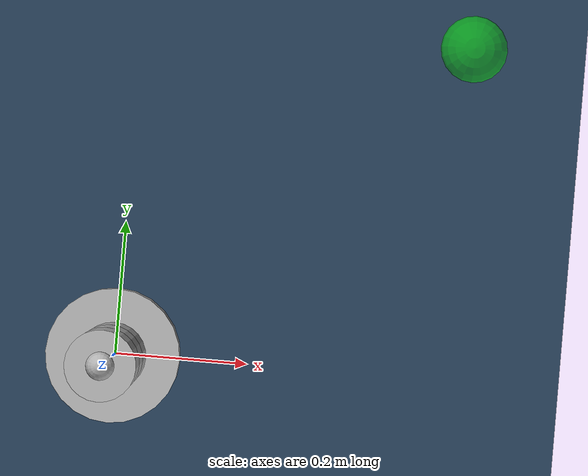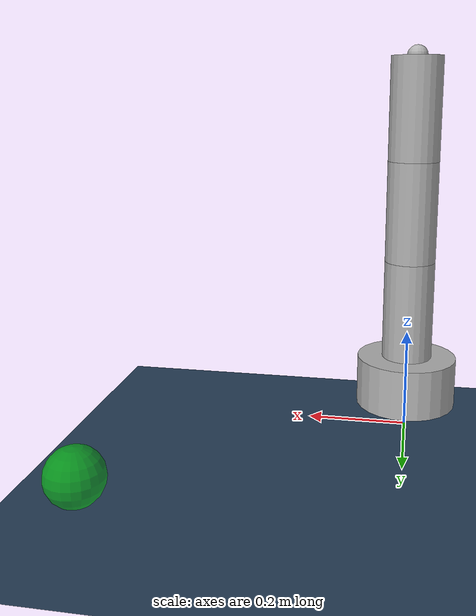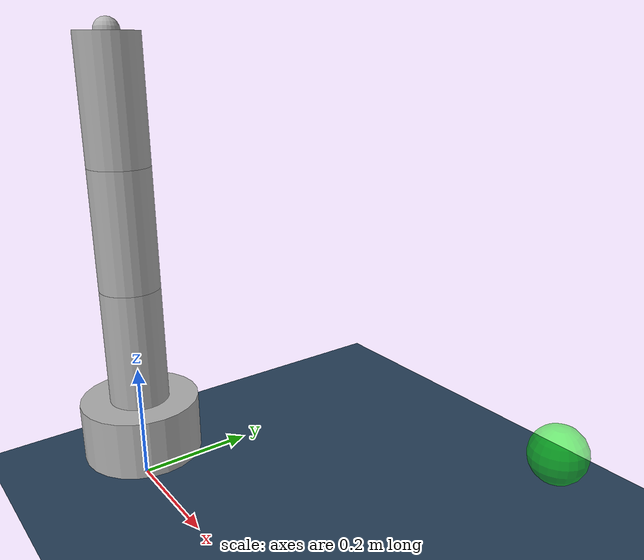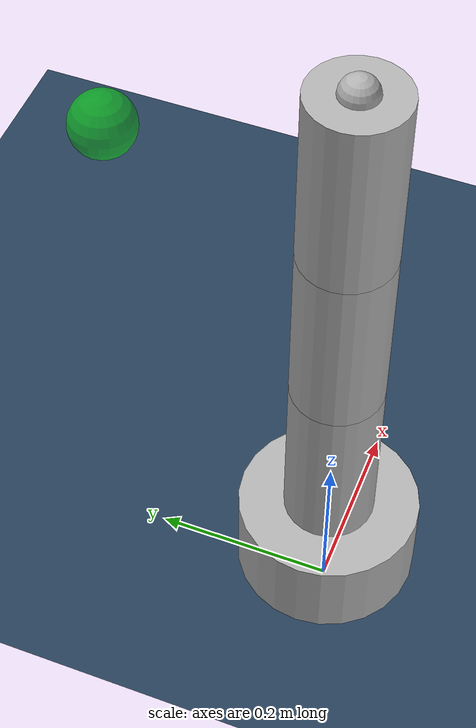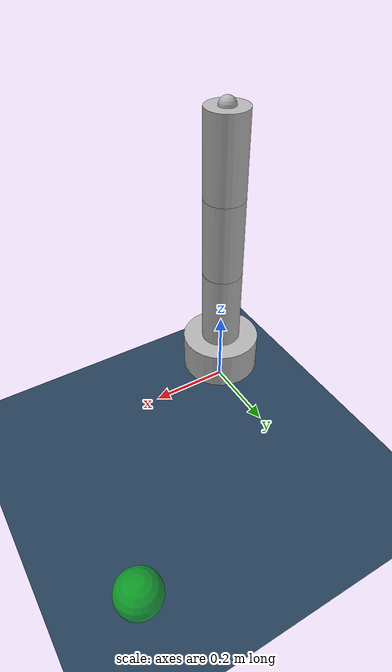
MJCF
<?xml version="1.0" encoding="UTF-8"?>
<mujoco model="simple_robot">
  <!-- Options -->
  <option timestep="0.01" iterations="50" solver="Newton" tolerance="1e-10"/>

  <!-- Defaults -->
  <default>
    <default class="visual">
      <geom contype="0" conaffinity="0" group="1"/>
    </default>
    <default class="collision">
      <geom contype="1" conaffinity="1" group="0"/>
    </default>
    <default class="joint">
      <joint armature="0.01" damping="0.1" frictionloss="0.01"/>
    </default>
    <default class="actuator">
      <position ctrlrange="-1 1" kp="100"/>
    </default>
  </default>

  <!-- Assets -->
  <asset>
    <texture name="grid" type="2d" builtin="checker" rgb1="0.1 0.2 0.3" rgb2="0.2 0.3 0.4" width="512" height="512"/>
    <material name="grid" texture="grid" texrepeat="1 1" texuniform="true" reflectance="0.2"/>
    <material name="robot" rgba="0.7 0.7 0.7 1"/>
    <material name="target" rgba="0 1 0 0.5"/>
  </asset>

  <!-- World -->
  <worldbody>
    <!-- Ground plane -->
    <geom name="ground" type="plane" size="10 10 0.1" pos="0 0 0" quat="1 0 0 0" material="grid" class="collision"/>
    <geom name="ground_visual" type="plane" size="10 10 0.1" pos="0 0 0" quat="1 0 0 0" material="grid" class="visual"/>

    <!-- Robot base -->
    <body name="base" pos="0 0 0.1">
      <geom name="base_geom" type="cylinder" size="0.1 0.05" material="robot" class="collision"/>
      <geom name="base_visual" type="cylinder" size="0.1 0.05" material="robot" class="visual"/>

      <!-- Joint 1 -->
      <body name="link1" pos="0 0 0.05">
        <joint name="joint1" type="hinge" axis="0 0 1" pos="0 0 0" class="joint"/>
        <geom name="link1_geom" type="cylinder" size="0.05 0.1" pos="0 0 0.1" material="robot" class="collision"/>
        <geom name="link1_visual" type="cylinder" size="0.05 0.1" pos="0 0 0.1" material="robot" class="visual"/>

        <!-- Joint 2 -->
        <body name="link2" pos="0 0 0.2">
          <joint name="joint2" type="hinge" axis="0 1 0" pos="0 0 0" class="joint"/>
          <geom name="link2_geom" type="cylinder" size="0.05 0.1" pos="0 0 0.1" material="robot" class="collision"/>
          <geom name="link2_visual" type="cylinder" size="0.05 0.1" pos="0 0 0.1" material="robot" class="visual"/>

          <!-- Joint 3 -->
          <body name="link3" pos="0 0 0.2">
            <joint name="joint3" type="hinge" axis="0 1 0" pos="0 0 0" class="joint"/>
            <geom name="link3_geom" type="cylinder" size="0.05 0.1" pos="0 0 0.1" material="robot" class="collision"/>
            <geom name="link3_visual" type="cylinder" size="0.05 0.1" pos="0 0 0.1" material="robot" class="visual"/>

            <!-- End effector -->
            <body name="end_effector" pos="0 0 0.2">
              <geom name="end_effector_geom" type="sphere" size="0.02" material="robot" class="collision"/>
              <geom name="end_effector_visual" type="sphere" size="0.02" material="robot" class="visual"/>
            </body>
          </body>
        </body>
      </body>
    </body>

    <!-- Target -->
    <body name="target" pos="0.5 0.5 0.1" mocap="true">
      <geom name="target_geom" type="sphere" size="0.05" material="target" class="visual"/>
    </body>
  </worldbody>

  <!-- Actuators -->
  <actuator>
    <position name="actuator1" joint="joint1" class="actuator"/>
    <position name="actuator2" joint="joint2" class="actuator"/>
    <position name="actuator3" joint="joint3" class="actuator"/>
  </actuator>

  <!-- Sensors -->
  <sensor>
    <jointpos name="joint1_pos" joint="joint1"/>
    <jointpos name="joint2_pos" joint="joint2"/>
    <jointpos name="joint3_pos" joint="joint3"/>
    <jointvel name="joint1_vel" joint="joint1"/>
    <jointvel name="joint2_vel" joint="joint2"/>
    <jointvel name="joint3_vel" joint="joint3"/>
  </sensor>

  <!-- Keyframes -->
  <keyframe>
    <key name="home" qpos="0 0 0 0 0 0"/>
  </keyframe>
</mujoco>
